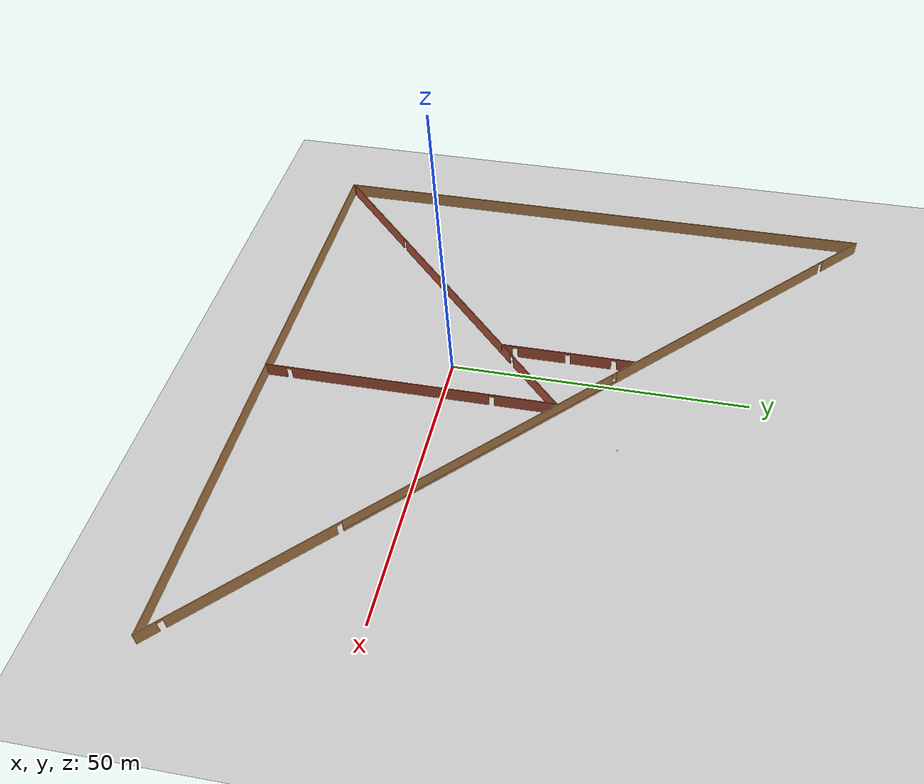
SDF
<sdf version="1.6">
 <world name="default">
  <model name="ground_plane">
   <static>1</static>
   <link name="link">
    <collision name="collision">
     <geometry><plane><normal>0 0 1</normal><size>100 100</size></plane></geometry>
     <surface><friction><ode><mu>100</mu><mu2>50</mu2></ode></friction></surface>
    </collision>
    <visual name="visual">
     <cast_shadows>0</cast_shadows>
     <geometry><plane><normal>0 0 1</normal><size>100 100</size></plane></geometry>
     <material>
      <script><uri>file://media/materials/scripts/gazebo.material</uri><name>Gazebo/Grey</name></script>
     </material>
    </visual>
   </link>
  </model>
  <model name="Building">
   <pose>8.1557 18.4087 0 0 -0 0</pose>
   <link name="Wall_1">
    <collision name="Wall_1_Collision">
     <geometry><box><size>96.8752 0.15 2.5</size></box></geometry>
     <pose>0 0 1.25 0 -0 0</pose>
    </collision>
    <visual name="Wall_1_Visual">
     <pose>0 0 1.25 0 -0 0</pose>
     <geometry><box><size>96.8752 0.15 2.5</size></box></geometry>
     <material>
      <script><uri>file://media/materials/scripts/gazebo.material</uri><name>Gazebo/Wood</name></script>
      <ambient>1 0.764706 0.305882 1</ambient>
     </material>
    </visual>
    <pose>-49.9405 -0.078415 0 0 -0 1.56903</pose>
   </link>
   <link name="Wall_15">
    <pose>-25.4387 -23.6088 0 0 -0 0.785398</pose>
    <visual name="Wall_15_Visual_0">
     <pose>-25.0598 0 1.25 0 -0 0</pose>
     <geometry><box><size>19.1305 0.15 2.5</size></box></geometry>
     <material>
      <script><uri>file://media/materials/scripts/gazebo.material</uri><name>Gazebo/Bricks</name></script>
      <ambient>1 1 1 1</ambient>
     </material>
    </visual>
    <collision name="Wall_15_Collision_0">
     <geometry><box><size>19.1305 0.15 2.5</size></box></geometry>
     <pose>-25.0598 0 1.25 0 -0 0</pose>
    </collision>
    <visual name="Wall_15_Visual_1">
     <pose>3.11936 0 1.25 0 -0 0</pose>
     <geometry><box><size>35.4277 0.15 2.5</size></box></geometry>
     <material>
      <script><uri>file://media/materials/scripts/gazebo.material</uri><name>Gazebo/Bricks</name></script>
      <ambient>1 1 1 1</ambient>
     </material>
    </visual>
    <collision name="Wall_15_Collision_1">
     <geometry><box><size>35.4277 0.15 2.5</size></box></geometry>
     <pose>3.11936 0 1.25 0 -0 0</pose>
    </collision>
    <visual name="Wall_15_Visual_2">
     <pose>28.1791 0 1.25 0 -0 0</pose>
     <geometry><box><size>12.8918 0.15 2.5</size></box></geometry>
     <material>
      <script><uri>file://media/materials/scripts/gazebo.material</uri><name>Gazebo/Bricks</name></script>
      <ambient>1 1 1 1</ambient>
     </material>
    </visual>
    <collision name="Wall_15_Collision_2">
     <geometry><box><size>12.8918 0.15 2.5</size></box></geometry>
     <pose>28.1791 0 1.25 0 -0 0</pose>
    </collision>
    <visual name="Wall_15_Visual_3">
     <pose>-15.0445 0 2.25 0 -0 0</pose>
     <geometry><box><size>0.9 0.15 0.5</size></box></geometry>
     <material>
      <script><uri>file://media/materials/scripts/gazebo.material</uri><name>Gazebo/Bricks</name></script>
      <ambient>1 1 1 1</ambient>
     </material>
    </visual>
    <collision name="Wall_15_Collision_3">
     <geometry><box><size>0.9 0.15 0.5</size></box></geometry>
     <pose>-15.0445 0 2.25 0 -0 0</pose>
    </collision>
    <visual name="Wall_15_Visual_4">
     <pose>21.2832 0 2.25 0 -0 0</pose>
     <geometry><box><size>0.9 0.15 0.5</size></box></geometry>
     <material>
      <script><uri>file://media/materials/scripts/gazebo.material</uri><name>Gazebo/Bricks</name></script>
      <ambient>1 1 1 1</ambient>
     </material>
    </visual>
    <collision name="Wall_15_Collision_4">
     <geometry><box><size>0.9 0.15 0.5</size></box></geometry>
     <pose>21.2832 0 2.25 0 -0 0</pose>
    </collision>
   </link>
   <link name="Wall_17">
    <pose>-1.03505 -23.7009 0 0 0 -1.5708</pose>
    <visual name="Wall_17_Visual_0">
     <pose>-19.4576 0 1.25 0 -0 0</pose>
     <geometry><box><size>10.5847 0.15 2.5</size></box></geometry>
     <material>
      <script><uri>file://media/materials/scripts/gazebo.material</uri><name>Gazebo/Bricks</name></script>
      <ambient>1 1 1 1</ambient>
     </material>
    </visual>
    <collision name="Wall_17_Collision_0">
     <geometry><box><size>10.5847 0.15 2.5</size></box></geometry>
     <pose>-19.4576 0 1.25 0 -0 0</pose>
    </collision>
    <visual name="Wall_17_Visual_1">
     <pose>3.52788 0 1.25 0 -0 0</pose>
     <geometry><box><size>33.5863 0.15 2.5</size></box></geometry>
     <material>
      <script><uri>file://media/materials/scripts/gazebo.material</uri><name>Gazebo/Bricks</name></script>
      <ambient>1 1 1 1</ambient>
     </material>
    </visual>
    <collision name="Wall_17_Collision_1">
     <geometry><box><size>33.5863 0.15 2.5</size></box></geometry>
     <pose>3.52788 0 1.25 0 -0 0</pose>
    </collision>
    <visual name="Wall_17_Visual_2">
     <pose>22.9855 0 1.25 0 -0 0</pose>
     <geometry><box><size>3.52897 0.15 2.5</size></box></geometry>
     <material>
      <script><uri>file://media/materials/scripts/gazebo.material</uri><name>Gazebo/Bricks</name></script>
      <ambient>1 1 1 1</ambient>
     </material>
    </visual>
    <collision name="Wall_17_Collision_2">
     <geometry><box><size>3.52897 0.15 2.5</size></box></geometry>
     <pose>22.9855 0 1.25 0 -0 0</pose>
    </collision>
    <visual name="Wall_17_Visual_3">
     <pose>-13.7153 0 2.25 0 -0 0</pose>
     <geometry><box><size>0.9 0.15 0.5</size></box></geometry>
     <material>
      <script><uri>file://media/materials/scripts/gazebo.material</uri><name>Gazebo/Bricks</name></script>
      <ambient>1 1 1 1</ambient>
     </material>
    </visual>
    <collision name="Wall_17_Collision_3">
     <geometry><box><size>0.9 0.15 0.5</size></box></geometry>
     <pose>-13.7153 0 2.25 0 -0 0</pose>
    </collision>
    <visual name="Wall_17_Visual_4">
     <pose>20.771 0 2.25 0 -0 0</pose>
     <geometry><box><size>0.9 0.15 0.5</size></box></geometry>
     <material>
      <script><uri>file://media/materials/scripts/gazebo.material</uri><name>Gazebo/Bricks</name></script>
      <ambient>1 1 1 1</ambient>
     </material>
    </visual>
    <collision name="Wall_17_Collision_4">
     <geometry><box><size>0.9 0.15 0.5</size></box></geometry>
     <pose>20.771 0 2.25 0 -0 0</pose>
    </collision>
   </link>
   <link name="Wall_3">
    <pose>0.069793 1e-06 0 0 0 -0.771261</pose>
    <visual name="Wall_3_Visual_0">
     <pose>-65.3239 0 1.25 0 -0 0</pose>
     <geometry><box><size>8.75684 0.15 2.5</size></box></geometry>
     <material>
      <script><uri>file://media/materials/scripts/gazebo.material</uri><name>Gazebo/Wood</name></script>
      <ambient>1 0.764706 0.305882 1</ambient>
     </material>
    </visual>
    <collision name="Wall_3_Collision_0">
     <geometry><box><size>8.75684 0.15 2.5</size></box></geometry>
     <pose>-65.3239 0 1.25 0 -0 0</pose>
    </collision>
    <visual name="Wall_3_Visual_1">
     <pose>-36.7119 0 1.25 0 -0 0</pose>
     <geometry><box><size>46.6672 0.15 2.5</size></box></geometry>
     <material>
      <script><uri>file://media/materials/scripts/gazebo.material</uri><name>Gazebo/Wood</name></script>
      <ambient>1 0.764706 0.305882 1</ambient>
     </material>
    </visual>
    <collision name="Wall_3_Collision_1">
     <geometry><box><size>46.6672 0.15 2.5</size></box></geometry>
     <pose>-36.7119 0 1.25 0 -0 0</pose>
    </collision>
    <visual name="Wall_3_Visual_2">
     <pose>51.9944 0 1.25 0 -0 0</pose>
     <geometry><box><size>26.7455 0.15 2.5</size></box></geometry>
     <material>
      <script><uri>file://media/materials/scripts/gazebo.material</uri><name>Gazebo/Wood</name></script>
      <ambient>1 0.764706 0.305882 1</ambient>
     </material>
    </visual>
    <collision name="Wall_3_Collision_2">
     <geometry><box><size>26.7455 0.15 2.5</size></box></geometry>
     <pose>51.9944 0 1.25 0 -0 0</pose>
    </collision>
    <visual name="Wall_3_Visual_3">
     <pose>67.9847 0 1.25 0 -0 0</pose>
     <geometry><box><size>3.43514 0.15 2.5</size></box></geometry>
     <material>
      <script><uri>file://media/materials/scripts/gazebo.material</uri><name>Gazebo/Wood</name></script>
      <ambient>1 0.764706 0.305882 1</ambient>
     </material>
    </visual>
    <collision name="Wall_3_Collision_3">
     <geometry><box><size>3.43514 0.15 2.5</size></box></geometry>
     <pose>67.9847 0 1.25 0 -0 0</pose>
    </collision>
    <visual name="Wall_3_Visual_4">
     <pose>12.1717 0 0.25 0 -0 0</pose>
     <geometry><box><size>51.0999 0.15 0.5</size></box></geometry>
     <material>
      <script><uri>file://media/materials/scripts/gazebo.material</uri><name>Gazebo/Wood</name></script>
      <ambient>1 0.764706 0.305882 1</ambient>
     </material>
    </visual>
    <collision name="Wall_3_Collision_4">
     <geometry><box><size>51.0999 0.15 0.5</size></box></geometry>
     <pose>12.1717 0 0.25 0 -0 0</pose>
    </collision>
    <visual name="Wall_3_Visual_5">
     <pose>12.5717 0 1.5 0 -0 0</pose>
     <geometry><box><size>50.2999 0.15 2</size></box></geometry>
     <material>
      <script><uri>file://media/materials/scripts/gazebo.material</uri><name>Gazebo/Wood</name></script>
      <ambient>1 0.764706 0.305882 1</ambient>
     </material>
    </visual>
    <collision name="Wall_3_Collision_5">
     <geometry><box><size>50.2999 0.15 2</size></box></geometry>
     <pose>12.5717 0 1.5 0 -0 0</pose>
    </collision>
    <visual name="Wall_3_Visual_6">
     <pose>-12.9783 0 1.9 0 -0 0</pose>
     <geometry><box><size>0.8 0.15 1.2</size></box></geometry>
     <material>
      <script><uri>file://media/materials/scripts/gazebo.material</uri><name>Gazebo/Wood</name></script>
      <ambient>1 0.764706 0.305882 1</ambient>
     </material>
    </visual>
    <collision name="Wall_3_Collision_6">
     <geometry><box><size>0.8 0.15 1.2</size></box></geometry>
     <pose>-12.9783 0 1.9 0 -0 0</pose>
    </collision>
    <visual name="Wall_3_Visual_7">
     <pose>-60.4954 0 2.25 0 -0 0</pose>
     <geometry><box><size>0.9 0.15 0.5</size></box></geometry>
     <material>
      <script><uri>file://media/materials/scripts/gazebo.material</uri><name>Gazebo/Wood</name></script>
      <ambient>1 0.764706 0.305882 1</ambient>
     </material>
    </visual>
    <collision name="Wall_3_Collision_7">
     <geometry><box><size>0.9 0.15 0.5</size></box></geometry>
     <pose>-60.4954 0 2.25 0 -0 0</pose>
    </collision>
    <visual name="Wall_3_Visual_8">
     <pose>65.8171 0 2.25 0 -0 0</pose>
     <geometry><box><size>0.9 0.15 0.5</size></box></geometry>
     <material>
      <script><uri>file://media/materials/scripts/gazebo.material</uri><name>Gazebo/Wood</name></script>
      <ambient>1 0.764706 0.305882 1</ambient>
     </material>
    </visual>
    <collision name="Wall_3_Collision_8">
     <geometry><box><size>0.9 0.15 0.5</size></box></geometry>
     <pose>65.8171 0 2.25 0 -0 0</pose>
    </collision>
    <visual name="Wall_3_Visual_9">
     <pose>38.1716 0 2.25 0 -0 0</pose>
     <geometry><box><size>0.9 0.15 0.5</size></box></geometry>
     <material>
      <script><uri>file://media/materials/scripts/gazebo.material</uri><name>Gazebo/Wood</name></script>
      <ambient>1 0.764706 0.305882 1</ambient>
     </material>
    </visual>
    <collision name="Wall_3_Collision_9">
     <geometry><box><size>0.9 0.15 0.5</size></box></geometry>
     <pose>38.1716 0 2.25 0 -0 0</pose>
    </collision>
   </link>
   <link name="Wall_5">
    <collision name="Wall_5_Collision">
     <geometry><box><size>100 0.15 2.5</size></box></geometry>
     <pose>0 0 1.25 0 -0 0</pose>
    </collision>
    <visual name="Wall_5_Visual">
     <pose>0 0 1.25 0 -0 0</pose>
     <geometry><box><size>100 0.15 2.5</size></box></geometry>
     <material>
      <script><uri>file://media/materials/scripts/gazebo.material</uri><name>Gazebo/Wood</name></script>
      <ambient>1 0.764706 0.305882 1</ambient>
     </material>
    </visual>
    <pose>-0.100561 -48.4411 0 0 0 -4e-06</pose>
   </link>
   <link name="Window_1">
    <collision name="Window_1_Collision">
     <geometry><box><size>0.8 0.17 0.8</size></box></geometry>
     <pose>0 0 0.4 0 -0 0</pose>
    </collision>
    <visual name="Window_1_Visual">
     <pose>0 0 0.4 0 -0 0</pose>
     <geometry><box><size>0.8 0.17 0.8</size></box></geometry>
     <material>
      <script><uri>file://media/materials/scripts/gazebo.material</uri><name>Gazebo/Grey</name></script>
     </material>
    </visual>
    <pose>-34.9574 33.5803 0.5 0 -0 0</pose>
   </link>
   <static>1</static>
  </model>
  <model name="wall">
   <pose>-4.33429 19.0122 0 0 -0 0</pose>
   <link name="Wall_0">
    <pose>0 0 0 0 0 -1.5708</pose>
    <visual name="Wall_0_Visual_0">
     <pose>-9.8496 0 1.25 0 -0 0</pose>
     <geometry><box><size>3.05079 0.15 2.5</size></box></geometry>
     <material>
      <script><uri>file://media/materials/scripts/gazebo.material</uri><name>Gazebo/Bricks</name></script>
      <ambient>0.435294 0.796078 0.67451 1</ambient>
     </material>
    </visual>
    <collision name="Wall_0_Collision_0">
     <geometry><box><size>3.05079 0.15 2.5</size></box></geometry>
     <pose>-9.8496 0 1.25 0 -0 0</pose>
    </collision>
    <visual name="Wall_0_Visual_1">
     <pose>-3.96842 0 1.25 0 -0 0</pose>
     <geometry><box><size>6.91158 0.15 2.5</size></box></geometry>
     <material>
      <script><uri>file://media/materials/scripts/gazebo.material</uri><name>Gazebo/Bricks</name></script>
      <ambient>0.435294 0.796078 0.67451 1</ambient>
     </material>
    </visual>
    <collision name="Wall_0_Collision_1">
     <geometry><box><size>6.91158 0.15 2.5</size></box></geometry>
     <pose>-3.96842 0 1.25 0 -0 0</pose>
    </collision>
    <visual name="Wall_0_Visual_2">
     <pose>4.46676 0 1.25 0 -0 0</pose>
     <geometry><box><size>8.15878 0.15 2.5</size></box></geometry>
     <material>
      <script><uri>file://media/materials/scripts/gazebo.material</uri><name>Gazebo/Bricks</name></script>
      <ambient>0.435294 0.796078 0.67451 1</ambient>
     </material>
    </visual>
    <collision name="Wall_0_Collision_2">
     <geometry><box><size>8.15878 0.15 2.5</size></box></geometry>
     <pose>4.46676 0 1.25 0 -0 0</pose>
    </collision>
    <visual name="Wall_0_Visual_3">
     <pose>10.4106 0 1.25 0 -0 0</pose>
     <geometry><box><size>1.92885 0.15 2.5</size></box></geometry>
     <material>
      <script><uri>file://media/materials/scripts/gazebo.material</uri><name>Gazebo/Bricks</name></script>
      <ambient>0.435294 0.796078 0.67451 1</ambient>
     </material>
    </visual>
    <collision name="Wall_0_Collision_3">
     <geometry><box><size>1.92885 0.15 2.5</size></box></geometry>
     <pose>10.4106 0 1.25 0 -0 0</pose>
    </collision>
    <visual name="Wall_0_Visual_4">
     <pose>-7.87421 0 2.25 0 -0 0</pose>
     <geometry><box><size>0.9 0.15 0.5</size></box></geometry>
     <material>
      <script><uri>file://media/materials/scripts/gazebo.material</uri><name>Gazebo/Bricks</name></script>
      <ambient>0.435294 0.796078 0.67451 1</ambient>
     </material>
    </visual>
    <collision name="Wall_0_Collision_4">
     <geometry><box><size>0.9 0.15 0.5</size></box></geometry>
     <pose>-7.87421 0 2.25 0 -0 0</pose>
    </collision>
    <visual name="Wall_0_Visual_5">
     <pose>-0.06263 0 2.25 0 -0 0</pose>
     <geometry><box><size>0.9 0.15 0.5</size></box></geometry>
     <material>
      <script><uri>file://media/materials/scripts/gazebo.material</uri><name>Gazebo/Bricks</name></script>
      <ambient>0.435294 0.796078 0.67451 1</ambient>
     </material>
    </visual>
    <collision name="Wall_0_Collision_5">
     <geometry><box><size>0.9 0.15 0.5</size></box></geometry>
     <pose>-0.06263 0 2.25 0 -0 0</pose>
    </collision>
    <visual name="Wall_0_Visual_6">
     <pose>8.99615 0 2.25 0 -0 0</pose>
     <geometry><box><size>0.9 0.15 0.5</size></box></geometry>
     <material>
      <script><uri>file://media/materials/scripts/gazebo.material</uri><name>Gazebo/Bricks</name></script>
      <ambient>0.435294 0.796078 0.67451 1</ambient>
     </material>
    </visual>
    <collision name="Wall_0_Collision_6">
     <geometry><box><size>0.9 0.15 0.5</size></box></geometry>
     <pose>8.99615 0 2.25 0 -0 0</pose>
    </collision>
   </link>
   <static>1</static>
  </model>
  <model name="ball">
   <link name="link_0">
    <inertial>
     <mass>0.0100475</mass>
     <inertia>
      <ixx>4.678e-05</ixx>
      <ixy>0</ixy>
      <ixz>0</ixz>
      <iyy>4.678e-05</iyy>
      <iyz>0</iyz>
      <izz>4.678e-05</izz>
     </inertia>
    </inertial>
    <visual name="visual">
     <geometry><sphere><radius>0.1</radius></sphere></geometry>
     <material>
      <lighting>1</lighting>
      <script><uri>file://media/materials/scripts/gazebo.material</uri><name>Gazebo/Grey</name></script>
      <ambient>0.3 0.3 0.3 1</ambient>
      <diffuse>0.7 0.7 0.7 1</diffuse>
      <specular>0.01 0.01 0.01 1</specular>
      <emissive>1 1 1 1</emissive>
      <shader type="vertex"><normal_map>__default__</normal_map></shader>
     </material>
    </visual>
    <collision name="collision">
     <geometry><sphere><radius>0.1</radius></sphere></geometry>
     <surface>
      <friction>
       <ode><mu>1</mu><mu2>1</mu2><fdir1>0 0 0</fdir1><slip1>0</slip1><slip2>0</slip2></ode>
       <torsional>
        <coefficient>1</coefficient>
        <patch_radius>0</patch_radius>
        <surface_radius>0</surface_radius>
        <use_patch_radius>1</use_patch_radius>
        <ode><slip>0</slip></ode>
       </torsional>
      </friction>
      <bounce><restitution_coefficient>0</restitution_coefficient><threshold>1e+06</threshold></bounce>
      <contact>
       <collide_without_contact>0</collide_without_contact>
       <collide_without_contact_bitmask>1</collide_without_contact_bitmask>
       <collide_bitmask>1</collide_bitmask>
       <ode>
        <soft_cfm>0</soft_cfm>
        <soft_erp>0.2</soft_erp>
        <kp>1e+13</kp>
        <kd>1</kd>
        <max_vel>0.01</max_vel>
        <min_depth>0</min_depth>
       </ode>
       <bullet>
        <split_impulse>1</split_impulse>
        <split_impulse_penetration_threshold>-0.01</split_impulse_penetration_threshold>
        <soft_cfm>0</soft_cfm>
        <soft_erp>0.2</soft_erp>
        <kp>1e+13</kp>
        <kd>1</kd>
       </bullet>
      </contact>
     </surface>
    </collision>
   </link>
   <static>0</static>
   <pose>13.0083 29.9838 0.1 0 -0 0</pose>
  </model>
 </world>
</sdf>
